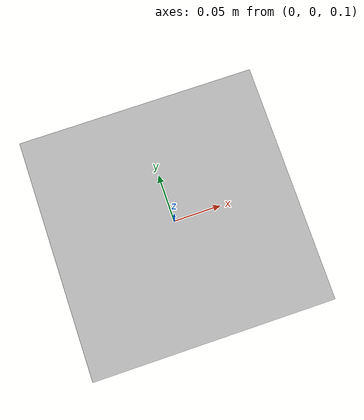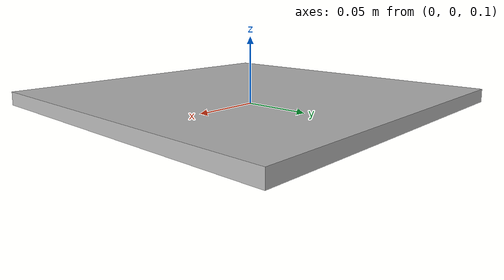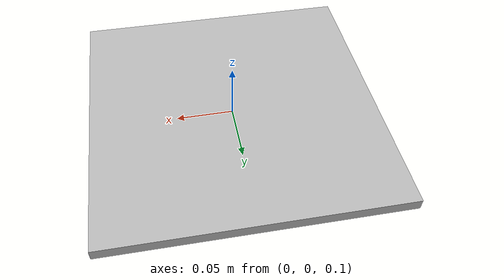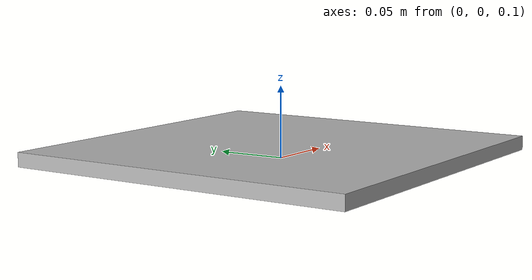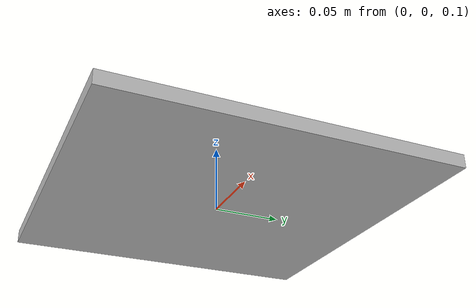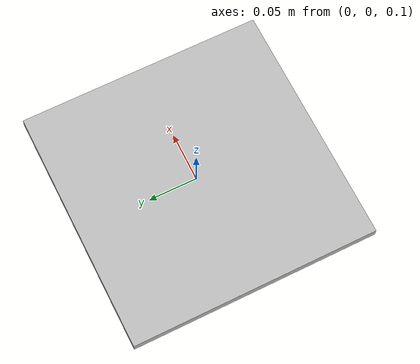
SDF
<?xml version="1.0"?>
<sdf version="1.5">
    <model name='qr8'>
      <static>true</static>
        <link name="qr8">
             <collision name="collision">
                <pose>0 0 0.1 0 0 0</pose>
                <geometry>
                    <mesh>
                        <uri>model://8qr_without_car/meshes/qr.stl</uri>
                    </mesh>
                </geometry>
            </collision>
            <visual name="visual">
              <pose>0 0 0.1 0 0 0</pose>
              <geometry>
              <mesh>
                 <uri>model://8qr_without_car/meshes/qr8.dae</uri>
              </mesh>
              </geometry>
             </visual>
        </link>

    </model>
</sdf>
